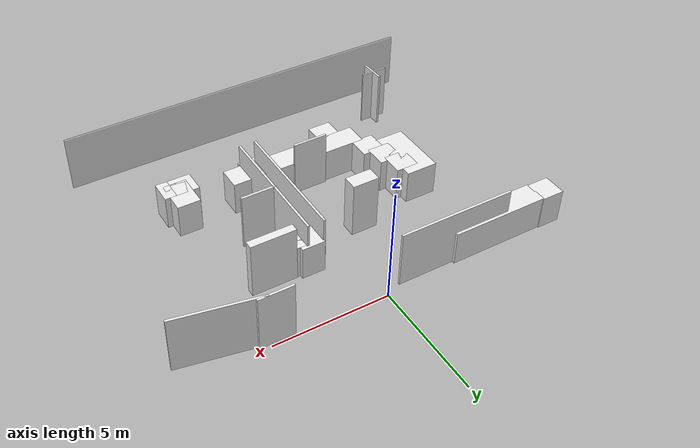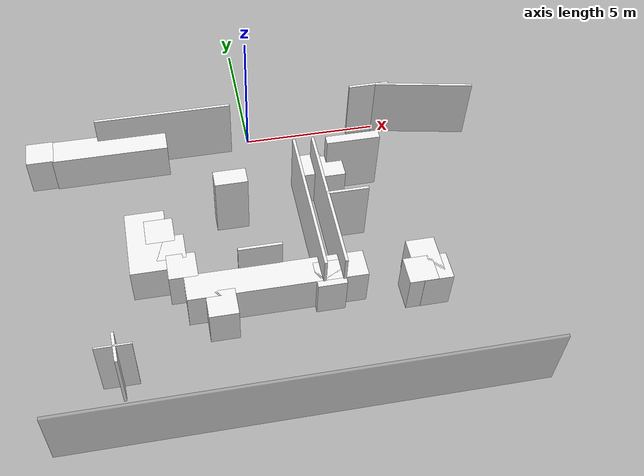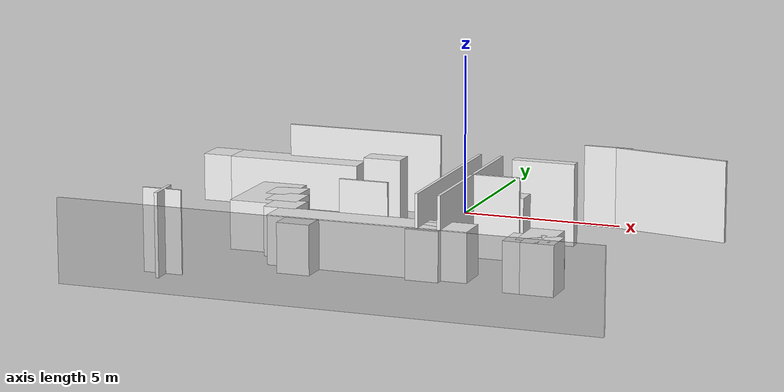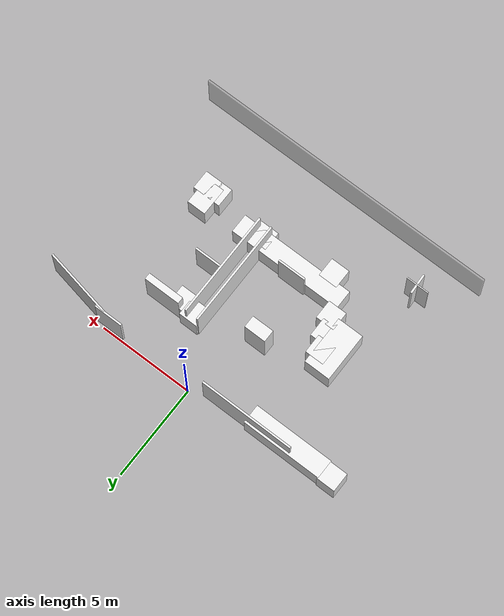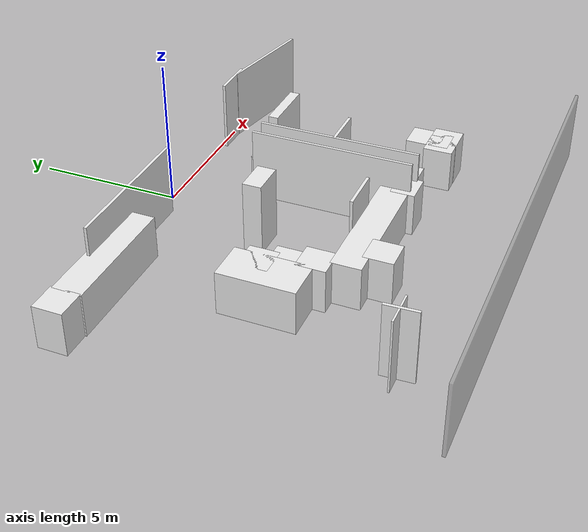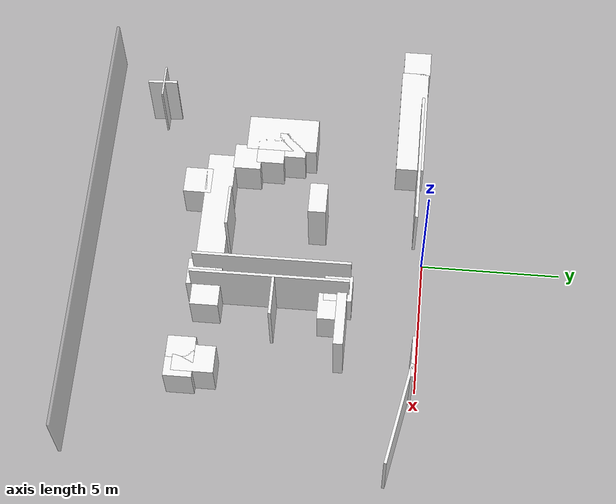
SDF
<sdf version="1.7">
 <world name="default">
  <model name="box_1">
   <pose>0.05 -12.05 1.25 0 -0 0</pose>
   <static>1</static>
   <link name="link">
    <collision name="collision"><geometry><box><size>16.1 0.1 2.5</size></box></geometry></collision>
    <visual name="visual">
     <geometry><box><size>16.1 0.1 2.5</size></box></geometry>
     <material>
      <script><name>Gazebo/GreyTransparent</name><uri>file://media/materials/scripts/gazebo.material</uri></script>
     </material>
    </visual>
   </link>
  </model>
  <model name="box_8_clone">
   <pose>6.73576 -0.524414 1.25 0 0 -0.191358</pose>
   <static>1</static>
   <link name="link">
    <collision name="collision"><geometry><box><size>3.67087 0.1 2.5</size></box></geometry></collision>
    <visual name="visual">
     <geometry><box><size>3.67087 0.1 2.5</size></box></geometry>
     <material>
      <script><name>Gazebo/White</name><uri>file://media/materials/scripts/gazebo.material</uri></script>
     </material>
    </visual>
   </link>
  </model>
  <model name="box_9_clone_clone_0">
   <pose>-2.15604 -8.36183 0.75 0 -0 0</pose>
   <static>1</static>
   <link name="link">
    <collision name="collision"><geometry><box><size>1 1 1.5</size></box></geometry></collision>
    <visual name="visual">
     <geometry><box><size>1 1 1.5</size></box></geometry>
     <material>
      <script><name>Gazebo/White</name><uri>file://media/materials/scripts/gazebo.material</uri></script>
     </material>
    </visual>
   </link>
  </model>
  <model name="box_9_clone_clone_1">
   <pose>-0.214525 -7.57962 0.75 0 -0 0</pose>
   <static>1</static>
   <link name="link">
    <collision name="collision"><geometry><box><size>6.13337 1 1.5</size></box></geometry></collision>
    <visual name="visual">
     <geometry><box><size>6.13337 1 1.5</size></box></geometry>
     <material>
      <script><name>Gazebo/White</name><uri>file://media/materials/scripts/gazebo.material</uri></script>
     </material>
    </visual>
   </link>
  </model>
  <model name="box_9_clone_clone_2">
   <pose>-3.28595 -6.65197 0.75 0 -0 0</pose>
   <static>1</static>
   <link name="link">
    <collision name="collision"><geometry><box><size>1 1 1.5</size></box></geometry></collision>
    <visual name="visual">
     <geometry><box><size>1 1 1.5</size></box></geometry>
     <material>
      <script><name>Gazebo/White</name><uri>file://media/materials/scripts/gazebo.material</uri></script>
     </material>
    </visual>
   </link>
  </model>
  <model name="box_9_clone_clone_3">
   <pose>5.12025 -8.17677 0.75 0 -0 0</pose>
   <static>1</static>
   <link name="link">
    <collision name="collision"><geometry><box><size>1 1 1.5</size></box></geometry></collision>
    <visual name="visual">
     <geometry><box><size>1 1 1.5</size></box></geometry>
     <material>
      <script><name>Gazebo/White</name><uri>file://media/materials/scripts/gazebo.material</uri></script>
     </material>
    </visual>
   </link>
  </model>
  <model name="box_9_clone_clone_4">
   <pose>4.90057 -7.68592 0.75 0 -0 0</pose>
   <static>1</static>
   <link name="link">
    <collision name="collision"><geometry><box><size>1 1.46842 1.5</size></box></geometry></collision>
    <visual name="visual">
     <geometry><box><size>1 1.46842 1.5</size></box></geometry>
     <material>
      <script><name>Gazebo/White</name><uri>file://media/materials/scripts/gazebo.material</uri></script>
     </material>
    </visual>
   </link>
  </model>
  <model name="box_8_clone_clone_13_clone_clone_clone_clone_0">
   <pose>3.45255 -2.73975 1.25 0 -0 0</pose>
   <static>1</static>
   <link name="link">
    <collision name="collision"><geometry><box><size>1.94528 0.344025 2.5</size></box></geometry></collision>
    <visual name="visual">
     <geometry><box><size>1.94528 0.344025 2.5</size></box></geometry>
     <material>
      <script><name>Gazebo/White</name><uri>file://media/materials/scripts/gazebo.material</uri></script>
     </material>
    </visual>
   </link>
  </model>
  <model name="box_8_clone_clone_11_clone">
   <pose>-1.19486 -3.87817 1.25 0 -0 0</pose>
   <static>1</static>
   <link name="link">
    <collision name="collision"><geometry><box><size>1.16351 0.640021 2.5</size></box></geometry></collision>
    <visual name="visual">
     <geometry><box><size>1.16351 0.640021 2.5</size></box></geometry>
     <material>
      <script><name>Gazebo/White</name><uri>file://media/materials/scripts/gazebo.material</uri></script>
     </material>
    </visual>
   </link>
  </model>
  <model name="box_9_clone_clone_7_clone_clone">
   <pose>-7.89766 -0.627489 0.75 0 -0 0</pose>
   <static>1</static>
   <link name="link">
    <collision name="collision"><geometry><box><size>1 1 1.5</size></box></geometry></collision>
    <visual name="visual">
     <geometry><box><size>1 1 1.5</size></box></geometry>
     <material>
      <script><name>Gazebo/White</name><uri>file://media/materials/scripts/gazebo.material</uri></script>
     </material>
    </visual>
   </link>
  </model>
  <model name="box_9_clone_clone_7_clone_clone_3">
   <pose>-4.34563 -5.4456 0.75 0 -0 0</pose>
   <static>1</static>
   <link name="link">
    <collision name="collision"><geometry><box><size>1.3917 2.57973 1.5</size></box></geometry></collision>
    <visual name="visual">
     <geometry><box><size>1.3917 2.57973 1.5</size></box></geometry>
     <material>
      <script><name>Gazebo/White</name><uri>file://media/materials/scripts/gazebo.material</uri></script>
     </material>
    </visual>
   </link>
  </model>
  <model name="box_9_clone_clone_7_clone_clone_4">
   <pose>-3.89333 -5.04613 0.75 0 -0 0</pose>
   <static>1</static>
   <link name="link">
    <collision name="collision"><geometry><box><size>1 1 1.5</size></box></geometry></collision>
    <visual name="visual">
     <geometry><box><size>1 1 1.5</size></box></geometry>
     <material>
      <script><name>Gazebo/White</name><uri>file://media/materials/scripts/gazebo.material</uri></script>
     </material>
    </visual>
   </link>
  </model>
  <model name="box_9_clone_clone_7_clone_clone_5">
   <pose>-3.58867 -5.82199 0.75 0 -0 0</pose>
   <static>1</static>
   <link name="link">
    <collision name="collision"><geometry><box><size>1 1 1.5</size></box></geometry></collision>
    <visual name="visual">
     <geometry><box><size>1 1 1.5</size></box></geometry>
     <material>
      <script><name>Gazebo/White</name><uri>file://media/materials/scripts/gazebo.material</uri></script>
     </material>
    </visual>
   </link>
  </model>
  <model name="box_9_clone_clone_5_clone_2_clone_0_clone_0">
   <pose>4.61046 -8.1706 0.75 0 -0 0</pose>
   <static>1</static>
   <link name="link">
    <collision name="collision"><geometry><box><size>1 1 1.5</size></box></geometry></collision>
    <visual name="visual">
     <geometry><box><size>1 1 1.5</size></box></geometry>
     <material>
      <script><name>Gazebo/White</name><uri>file://media/materials/scripts/gazebo.material</uri></script>
     </material>
    </visual>
   </link>
  </model>
  <model name="box_9_clone_clone_7_clone_clone_clone">
   <pose>-5.32159 -0.673379 0.75 0 -0 0</pose>
   <static>1</static>
   <link name="link">
    <collision name="collision"><geometry><box><size>4.25949 1 1.5</size></box></geometry></collision>
    <visual name="visual">
     <geometry><box><size>4.25949 1 1.5</size></box></geometry>
     <material>
      <script><name>Gazebo/White</name><uri>file://media/materials/scripts/gazebo.material</uri></script>
     </material>
    </visual>
   </link>
  </model>
  <model name="box_6_clone_clone_3_clone_clone_clone_clone_0">
   <pose>2.0182 -5.31678 1.25 0 -0 0</pose>
   <static>1</static>
   <link name="link">
    <collision name="collision"><geometry><box><size>0.1 5.60332 2.5</size></box></geometry></collision>
    <visual name="visual">
     <geometry><box><size>0.1 5.60332 2.5</size></box></geometry>
     <material>
      <script><name>Gazebo/White</name><uri>file://media/materials/scripts/gazebo.material</uri></script>
     </material>
    </visual>
   </link>
  </model>
  <model name="box_6_clone_clone_3_clone_clone_clone_clone_0_clone">
   <pose>1.33283 -5.29976 1.25 0 -0 0</pose>
   <static>1</static>
   <link name="link">
    <collision name="collision"><geometry><box><size>0.1 5.60332 2.5</size></box></geometry></collision>
    <visual name="visual">
     <geometry><box><size>0.1 5.60332 2.5</size></box></geometry>
     <material>
      <script><name>Gazebo/White</name><uri>file://media/materials/scripts/gazebo.material</uri></script>
     </material>
    </visual>
   </link>
  </model>
  <model name="box_9_clone_clone_5_clone_2_clone_0_clone_clone">
   <pose>1.83634 -2.91858 0.75 0 -0 0</pose>
   <static>1</static>
   <link name="link">
    <collision name="collision"><geometry><box><size>1 1 1.5</size></box></geometry></collision>
    <visual name="visual">
     <geometry><box><size>1 1 1.5</size></box></geometry>
     <material>
      <script><name>Gazebo/White</name><uri>file://media/materials/scripts/gazebo.material</uri></script>
     </material>
    </visual>
   </link>
  </model>
  <model name="box_8_clone_clone">
   <pose>4.67136 -0.169302 1.25 0 -0 0</pose>
   <static>1</static>
   <link name="link">
    <collision name="collision"><geometry><box><size>1.5 0.1 2.5</size></box></geometry></collision>
    <visual name="visual">
     <geometry><box><size>1.5 0.1 2.5</size></box></geometry>
     <material>
      <script><name>Gazebo/White</name><uri>file://media/materials/scripts/gazebo.material</uri></script>
     </material>
    </visual>
   </link>
  </model>
  <model name="box_9_clone_clone_5_clone_2_clone_0_clone_0_clone">
   <pose>1.56966 -7.808 0.75 0 -0 0</pose>
   <static>1</static>
   <link name="link">
    <collision name="collision"><geometry><box><size>1 1 1.5</size></box></geometry></collision>
    <visual name="visual">
     <geometry><box><size>1 1 1.5</size></box></geometry>
     <material>
      <script><name>Gazebo/White</name><uri>file://media/materials/scripts/gazebo.material</uri></script>
     </material>
    </visual>
   </link>
  </model>
  <model name="box_8_clone_clone_3_clone_clone_clone">
   <pose>-3.21063 -0.339317 1.25 0 -0 0</pose>
   <static>1</static>
   <link name="link">
    <collision name="collision"><geometry><box><size>5.03031 0.1 2.5</size></box></geometry></collision>
    <visual name="visual">
     <geometry><box><size>5.03031 0.1 2.5</size></box></geometry>
     <material>
      <script><name>Gazebo/White</name><uri>file://media/materials/scripts/gazebo.material</uri></script>
     </material>
    </visual>
   </link>
  </model>
  <model name="box_9_clone_clone_5_clone_2_clone_0_clone_0_clone_0">
   <pose>2.56687 -3.08492 0.75 0 -0 0</pose>
   <static>1</static>
   <link name="link">
    <collision name="collision"><geometry><box><size>1 1 1.5</size></box></geometry></collision>
    <visual name="visual">
     <geometry><box><size>1 1 1.5</size></box></geometry>
     <material>
      <script><name>Gazebo/White</name><uri>file://media/materials/scripts/gazebo.material</uri></script>
     </material>
    </visual>
   </link>
  </model>
  <model name="box_8_clone_clone_11_clone_clone">
   <pose>2.72179 -5.17165 1.25 0 -0 0</pose>
   <static>1</static>
   <link name="link">
    <collision name="collision"><geometry><box><size>1.5 0.1 2.5</size></box></geometry></collision>
    <visual name="visual">
     <geometry><box><size>1.5 0.1 2.5</size></box></geometry>
     <material>
      <script><name>Gazebo/White</name><uri>file://media/materials/scripts/gazebo.material</uri></script>
     </material>
    </visual>
   </link>
  </model>
  <model name="box_8_clone_clone_11_clone_clone_0">
   <pose>-5.67141 -10.0374 1.25 0 -0 1.62008</pose>
   <static>1</static>
   <link name="link">
    <collision name="collision"><geometry><box><size>1.06277 0.1 2.5</size></box></geometry></collision>
    <visual name="visual">
     <geometry><box><size>1.06277 0.1 2.5</size></box></geometry>
     <material>
      <script><name>Gazebo/White</name><uri>file://media/materials/scripts/gazebo.material</uri></script>
     </material>
    </visual>
   </link>
  </model>
  <model name="box_8_clone_clone_11_clone_clone_1">
   <pose>-5.71384 -9.99262 1.25 0 -0 0</pose>
   <static>1</static>
   <link name="link">
    <collision name="collision"><geometry><box><size>1.19714 0.0589998 2.5</size></box></geometry></collision>
    <visual name="visual">
     <geometry><box><size>1.19714 0.0589998 2.5</size></box></geometry>
     <material>
      <script><name>Gazebo/White</name><uri>file://media/materials/scripts/gazebo.material</uri></script>
     </material>
    </visual>
   </link>
  </model>
  <model name="box_8_clone_clone_11_clone_clone_1_clone">
   <pose>-0.668626 -7.0443 1.25 0 -0 0</pose>
   <static>1</static>
   <link name="link">
    <collision name="collision"><geometry><box><size>1.5 0.1 2.5</size></box></geometry></collision>
    <visual name="visual">
     <geometry><box><size>1.5 0.1 2.5</size></box></geometry>
     <material>
      <script><name>Gazebo/White</name><uri>file://media/materials/scripts/gazebo.material</uri></script>
     </material>
    </visual>
   </link>
  </model>
 </world>
</sdf>
